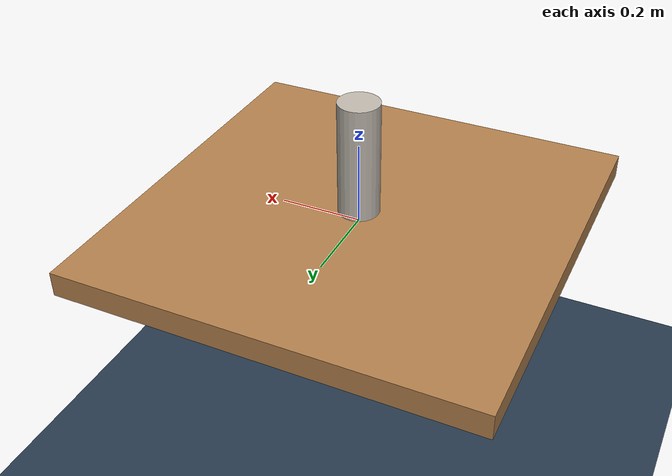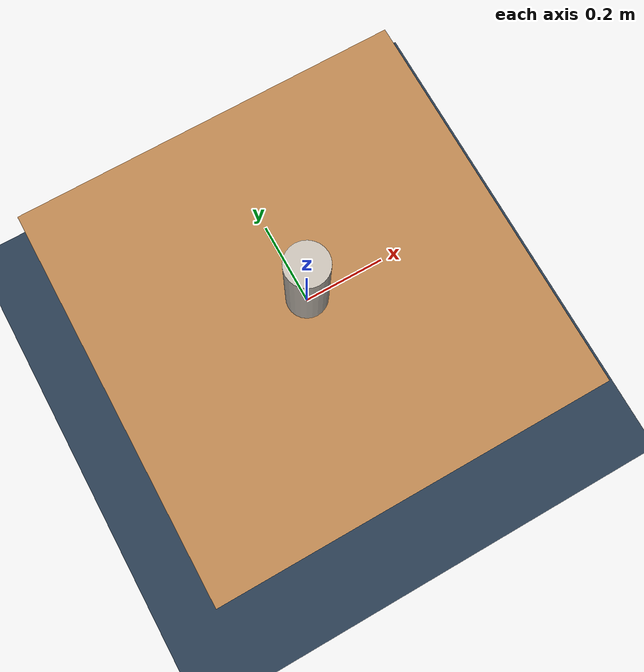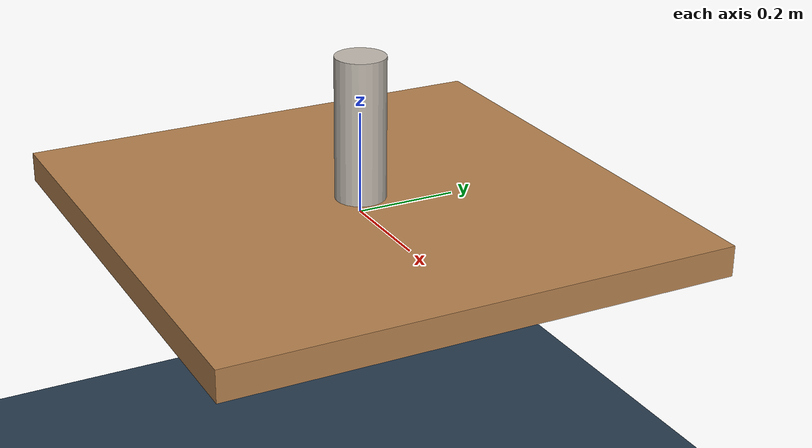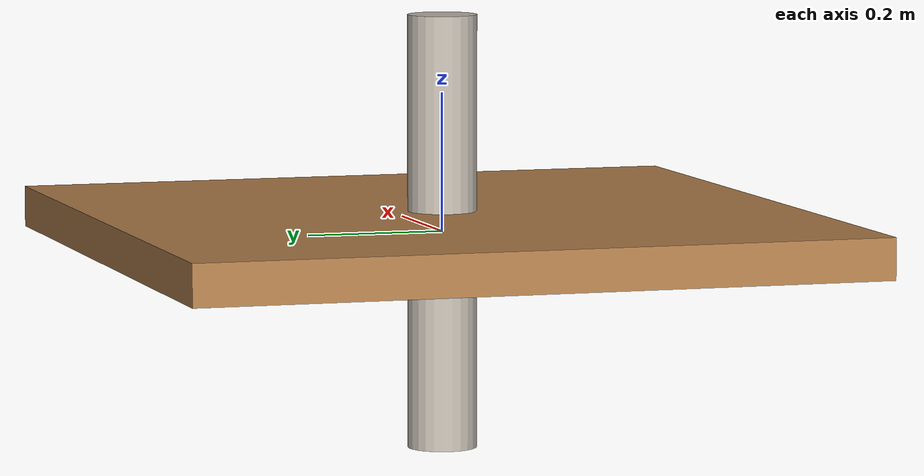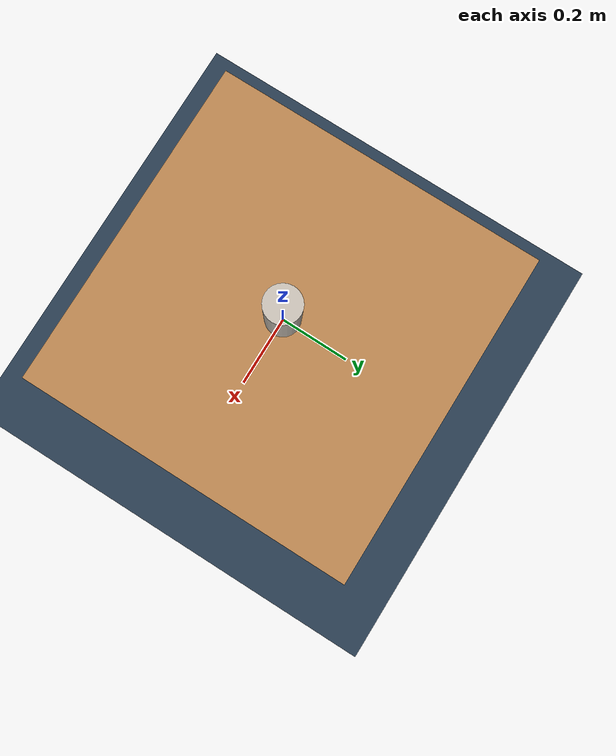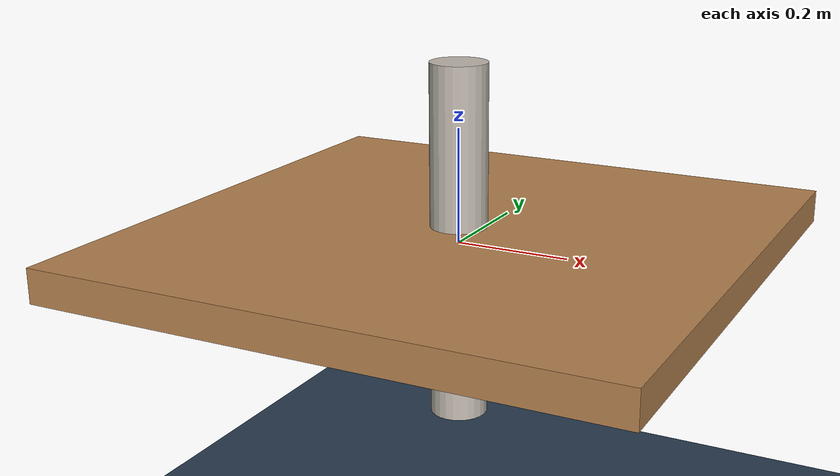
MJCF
<mujoco model="table_arena">
    <asset>
        <texture type="skybox" builtin="gradient" rgb1="0.3 0.5 0.7" rgb2="0 0 0" width="512"
        height="3072"/>
        <texture builtin="flat" height="256" rgb1="1 1 1." rgb2=".2 .3 .4" type="skybox" width="256"/>
        <texture builtin="checker" height="512" name="texplane" rgb1=".2 .3 .4" rgb2=".1 0.15 0.2" type="2d" width="512"/>
        <material name="floorplane" reflectance="0.5" texrepeat="1 1" texture="texplane" texuniform="true"/>
        <!-- steel legs -->
        <texture file="../textures/steel-brushed.png" type="cube" name="tex-steel-brushed"/>
        <material name="table_legs_metal" reflectance="0.8" shininess="0.8" texrepeat="1 1" texture="tex-steel-brushed" />
    </asset>

     <default>
        <default class="obstacle">
            <default class="obs_collision">
                <geom quat="0.707107 0.707107 0 0" condim="1" rgba="0 0 0 0" group="0" solref="0.001 1"/>
            </default>
            <default class="obs_visual">
                <geom quat="0.707107 0.707107 0 0" conaffinity="0" contype="0" group="1" material="table_legs_metal"/>
            </default>
        </default>
    </default>

    <worldbody>
        <!-- ground floor -->
        <geom condim="3" material="floorplane" name="boden" pos="0 0 -0.677" size="5 5 .125" type="plane" />

        <!-- original plane -->
        <geom condim="3" rgba="0 0 0 0" name="FLOOR" pos="0 0 0" size="0.5 0.5 .125" type="plane" group="0" />
        <site pos="0 0 0.2" name="floor_top" size="0.001 0.001 0.001" rgba="0 0 0 0" group="0" />

        <!--Table (visual only)-->
        <body name="table" pos="0 0 0">
            <geom pos="0 0 0" size="0.5 0.5 0.03" type="box" conaffinity="0" contype="0" group="1" name="table_visual" rgba=".7 .5 .3 1"/>
            <!-- Legs (visual only) -->
            <geom pos="0 0 0" size="0.05 0.313" type="cylinder" conaffinity="0" contype="0" group="1" name="table_leg1_visual" material="table_legs_metal"/>
            <geom pos="0 0 0" size="0.05 0.313" type="cylinder" conaffinity="0" contype="0" group="1" name="table_leg2_visual" material="table_legs_metal"/>
            <geom pos="0 0 0" size="0.05 0.313" type="cylinder" conaffinity="0" contype="0" group="1" name="table_leg3_visual" material="table_legs_metal"/>
            <geom pos="0 0 0" size="0.05 0.313" type="cylinder" conaffinity="0" contype="0" group="1" name="table_leg4_visual" material="table_legs_metal"/>
<!--            &lt;!&ndash; Shelf for demo (visual only) &ndash;&gt;-->
        </body>

        <!-- lights -->
        <light name="light1" diffuse=".8 .8 .8" dir="0 -.15 -1" directional="false" pos="1 1 4.0" specular="0.3 0.3 0.3" castshadow="false"/>
        <light name="light2" diffuse=".8 .8 .8" dir="0 -.15 -1" directional="false" pos="-3. -3. 4.0" specular="0.3 0.3 0.3" castshadow="false"/>

        <!-- front view -->
        <!--camera mode="fixed" name="frontview" pos="0 -.7 0.5" quat="0.8891 0.4575 0. 0." fovy="60"/-->
        <!-- robot front view -->
        <camera mode="fixed" name="frontview" pos="0 -1.2 0.9" quat="0.86 0.51 0. 0." fovy="60"/>
        <camera mode="fixed" name="sideview" pos="1.4 -0.2 0.5" quat="0.5468 0.4482 0.4482 0.5468"/>
        <camera mode="fixed" name="topview" pos="0.15 -0.2 2.0" quat="1 0 0 0 "/>
    </worldbody>
</mujoco>
